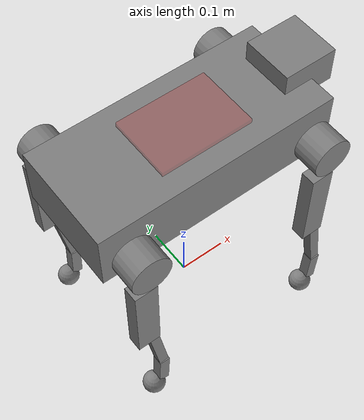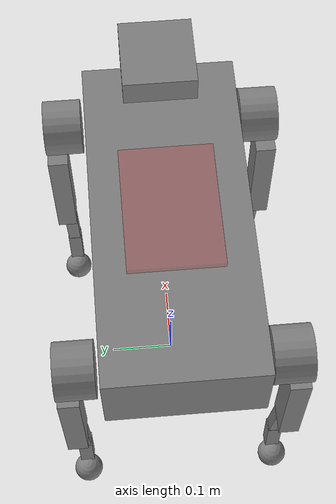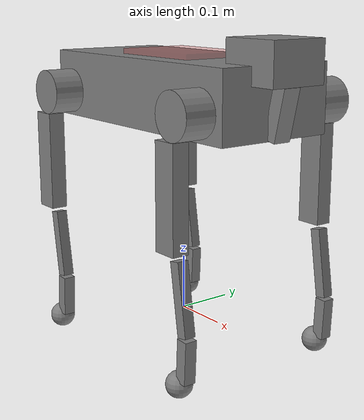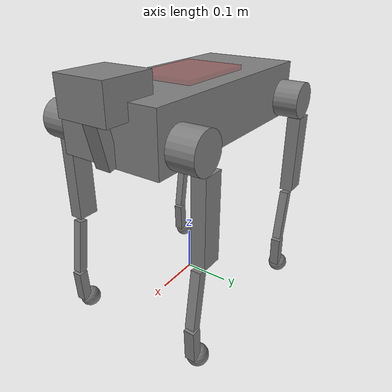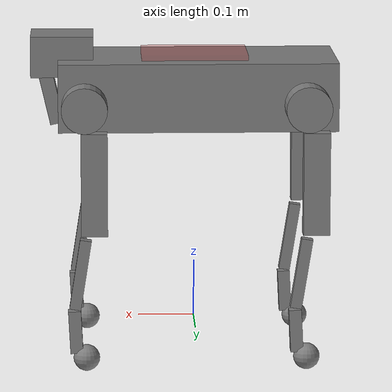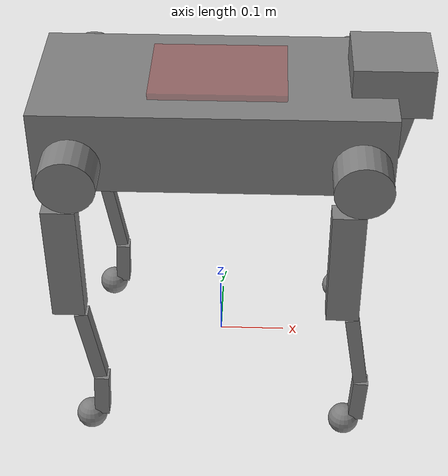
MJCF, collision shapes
<mujoco model="uni_0417">
<!-- zsirob 250825 -->
  <compiler angle="radian" meshdir="./" autolimits="true"/>

  <option iterations="20" ls_iterations="5" timestep="0.002" integrator="Euler">
    <flag eulerdamp="disable"/>
  </option>

  <default>
    <default class="go1">

      <geom condim="1" contype="0" conaffinity="1"/>
      <joint axis="0 1 0" armature="0.01" damping="0.05"/>
      <position forcerange="-30 30" inheritrange="1.5" kp="50"/>

      <default class="abduction">
        <joint axis="1 0 0" range="-0.5233 0.5233" frictionloss="0.3"  margin="0.02" solreflimit="0.001 1"/>
      </default>

      <default class="hip">
        <joint range="-1.1775 2.7475" frictionloss="0.3"  margin="0.02" solreflimit="0.001 1"/>
      </default>

      <default class="knee">
        <joint range="-2.7562 -0.6978" frictionloss="0.3" margin="0.02" solreflimit="0.001 1"/>
      </default>

      <default class="visual">
        <geom type="mesh" contype="0" conaffinity="0" group="2" material="dark"/>
      </default>

      <default class="collision">
        <geom group="3" type="capsule"/>
        <default class="foot">
          <geom type="sphere" size="0.023" pos="0 0 0" solimp="0.9 .95 0.023" condim="3"/>
        </default>
      </default>

    </default>
  </default>

  <asset>
    <material name="dark" rgba="0.2 0.2 0.2 1"/>
    <material name="none" rgba="0.75294 0.75294 0.75294 1" />
    <material name="default_material" rgba="0.7 0.7 0.7 1" />
    <material name="collision_material" rgba="1.0 0.28 0.1 0.9" />
    <mesh name="BASE_LINK.STL" file="BASE_LINK.STL" />
    <mesh name="FL_ABAD_LINK.STL" file="FL_ABAD_LINK.STL" />
    <mesh name="FL_HIP_LINK.STL" file="FL_HIP_LINK.STL" />
    <mesh name="FL_KNEE_LINK.STL" file="FL_KNEE_LINK.STL" />
    <mesh name="FL_FOOT_LINK.STL" file="FL_FOOT_LINK.STL" />
    <mesh name="FR_ABAD_LINK.STL" file="FR_ABAD_LINK.STL" />
    <mesh name="FR_HIP_LINK.STL" file="FR_HIP_LINK.STL" />
    <mesh name="FR_KNEE_LINK.STL" file="FR_KNEE_LINK.STL" />
    <mesh name="FR_FOOT_LINK.STL" file="FR_FOOT_LINK.STL" />
    <mesh name="RR_ABAD_LINK.STL" file="RR_ABAD_LINK.STL" />
    <mesh name="RR_HIP_LINK.STL" file="RR_HIP_LINK.STL" />
    <mesh name="RR_KNEE_LINK.STL" file="RR_KNEE_LINK.STL" />
    <mesh name="RR_FOOT_LINK.STL" file="RR_FOOT_LINK.STL" />
    <mesh name="RL_ABAD_LINK.STL" file="RL_ABAD_LINK.STL" />
    <mesh name="RL_HIP_LINK.STL" file="RL_HIP_LINK.STL" />
    <mesh name="RL_KNEE_LINK.STL" file="RL_KNEE_LINK.STL" />
    <mesh name="RL_FOOT_LINK.STL" file="RL_FOOT_LINK.STL" />
  </asset>

  <worldbody>
    <light name="spotlight" mode="targetbodycom" target="BASE_LINK" pos="3 0 4"/>
    <body name="BASE_LINK"  pos="0 0 0.4" childclass="go1" quat="1 0 0 0">
      <camera name="track" pos="0.846 -1.3 0.316" xyaxes="0.866 0.500 0.000 -0.171 0.296 0.940" mode="trackcom"/>
      <camera name="top" pos="-1 0 1" xyaxes="0 -1 0 0.7 0 0.7" mode="trackcom"/>
      <camera name="side" pos="0 -1 .3" xyaxes="1 0 0 0 1 2" mode="trackcom"/>
      <camera name="back" pos="-1 0 .3" xyaxes="0 -1 0 1 0 2" mode="trackcom"/>
      <inertial pos="0.014501881818807 -0.000289250801671 0.013238465807008" quat="-0.0076083635337945155 0.6942254418113303 -0.00728014172674013 0.7196805876794534" mass="7.30032053935248" diaginertia="0.1026006987158561 0.08404328046371345 0.03227102139098372"/>

      <freejoint/>

      <geom class="visual" type="mesh" rgba="0.592156862745098 0.666666666666667 0.682352941176471 1" mesh="BASE_LINK.STL" />
      <geom name="case" class="collision" type="box" size="0.245 0.1095 0.06" pos="-0.005 0 0.011469"/>
      <geom name="case_1" class="collision" type="box" size="0.0125 0.0166 0.045" pos="0.25239 0 -0.00332" quat="0.993571856 0 0.113203214 0"/>
      <geom name="case_2" class="collision" type="box" size="0.055 0.053 0.036" pos="0.23335 0 0.076435"/>

      <site name="case" pos="0 0 0" rgba="1 0 0 1" size="0.02" group="5"/>
      <site name="imu" pos="0 0 0" rgba="0 1 0 1" size="0.02" group="5"/>
      <body name="PAYLOAD_LINK" pos="0 0 0.075725056">
        <inertial pos="0 0 0" mass="0.01" diaginertia="0.00002 0.00003 0.00004"/>
        <geom
          name="payload_geom"
          type="box"
          size="0.09345 0.066 0.005"
          pos="0 0 0"
          contype="0"
          conaffinity="0"
          density="0"
          rgba="0.8 0.2 0.2 0.3"
        />
      </body>

      <body name="FL_ABAD_LINK" pos="0.144 0.064225 -2.0143e-05">
        <inertial pos="0.0144424564697362 -0.00600368145551691 -1.87988493965952e-07" quat="0.5291736825142328 0.5292105089455847 0.46897609668839413 0.46901265621601496" mass="0.320329944374416" diaginertia="0.00047783943255139626 0.00046908698480158334 0.0001241081155081985"/>

        <joint class="abduction" name="FL_ABAD_JOINT" pos="0 0 0" axis="1 0 0"/>
        <geom type="mesh" class="visual" rgba="1 1 1 1" mesh="FL_ABAD_LINK.STL"/>
        <!-- FL_ABAD_Collision -->
        <geom name="FL_ABAD_COL" class="collision" type="cylinder" size="0.04 0.0275" pos="0.05 0.08 0" quat="0.499998163 0.500001837 -0.5 0.5"/>

        <body name="FL_HIP_LINK" pos="0.04855 0.01325 0">
          <inertial pos="-0.00048600000000000016 0.03225 -0.02093473684210526" quat="0.9731445081294574 0.22538963062352477 0.04541992243914374 -0.011238832256468578" mass="1.33" diaginertia="0.005615092772179515 0.0049505271280553395 0.0015907903549875844"/>
          <joint class="hip" name="FL_HIP_JOINT" pos="0 0 0" axis="0 1 0" />
          <site name="FL_hip" pos="0 0.0 0" type="sphere" size="0.02" rgba="0 1 0 1" group="5"/>

          <geom type="mesh" class="visual" rgba="1 1 1 1" mesh="FL_HIP_LINK.STL" />
          <!-- FL_HIP_Collision -->
          <geom name="FL_HIP_COL" class="collision" type="box" size="0.023 0.015 0.09" pos="-0.015 0.08 -0.13" quat="1 0 0 0"/>

          <body name="FL_KNEE_LINK" pos="0 0.077399 -0.21">
            <inertial pos="0.00798892884543451 5.44137953750745e-07 -0.0869849769173929" quat="0.7064576324739475 -0.03014641061466151 -0.03014053077085178 0.7064703502987295" mass="0.14" diaginertia="0.0010094383372615727 0.0009976757599102577 2.1870869909055355e-05"/>
            <site name="FL_knee" pos="0 0.0 0" type="sphere" size="0.02" rgba="0 1 0 1" group="5"/>

            <joint class="knee" name="FL_KNEE_JOINT" pos="0 0 0" axis="0 1 0" />

                    <geom type="mesh" class="visual" rgba="1 1 1 1" mesh="FL_KNEE_LINK.STL" />
                    <!-- FL_KNEE_Collision -->
                    <geom name="FL_KNEE_COL_0" class="collision" type="box" size="0.01 0.01 0.062" pos="0.009917 0 -0.079793" quat="0.996917334 0 -0.0784590959 0"/>
                    <geom name="FL_KNEE_COL_1" class="collision" type="box" size="0.011 0.011 0.0375" pos="0.018955 0 -0.18187" quat="0.99968856 0 0.024955609 0"/>

                    <body name="FL_FOOT_LINK" pos="0 0 -0.229">
                    <geom pos="0 0 0" type="mesh" class="visual" rgba="0.592156862745098 0.666666666666667 0.682352941176471 1" mesh="FL_FOOT_LINK.STL" />
                    <inertial pos="-2.02372318569566e-07 1.92661398834559e-07 -2.15647114332196e-07" quat="0.707106781186548 0 0 0.707106781186548" mass="0.0589523342854384" diaginertia="1.24762320466804e-05 1.24762153863284e-05 1.24762153863285e-05" />
                    <!-- FL_FOOT_Collision -->
                    <geom name="FL" class="foot" pos="0 0 0"/>
                    <site name="FL" pos="0 0 0" type="sphere" size="0.023" quat="0 0 1 1" group="5"/>
                    </body>

          </body>
        </body>
      </body>

      <body name="FR_ABAD_LINK" pos="0.144 -0.064181 -2.0143e-05">
        <inertial pos="0.014442558979466 0.00600357212318758 -5.04034752824012e-08" quat="0.4689967342827985 0.4689920459643406 0.529194161742345 0.5291900067386679" mass="0.320332974895231" diaginertia="0.00047784300790091016 0.0004690887949312498 0.00012411096159625467"/>

        <joint class="abduction" name="FR_ABAD_JOINT" pos="0 0 0" axis="1 0 0"/>
        <geom type="mesh" class="visual" rgba="1 1 1 1" mesh="FR_ABAD_LINK.STL"/>
        <!-- FR_ABAD_Collision -->
        <geom name="FR_ABAD_COL" class="collision" type="cylinder" size="0.04 0.0275" pos="0.05 -0.08 0" quat="0.499998163 0.500001837 -0.5 0.5"/>

        <body name="FR_HIP_LINK" pos="0.04855 -0.01325 0">
          <inertial pos="-0.00048600000000000016 -0.03225 -0.02093473684210526" quat="0.9731444294565023 -0.22538978092494474 0.04542027146479661 0.011241219348831186" mass="1.33" diaginertia="0.005615092782114939 0.004950529438277558 0.0015907880348299617"/>
          <joint class="hip" name="FR_HIP_JOINT" pos="0 0 0" axis="0 1 0" />
          <site name="FR_hip" pos="0 -0.0 0" type="sphere" size="0.02" rgba="0 1 0 1" group="5"/>

          <geom type="mesh" class="visual" rgba="1 1 1 1" mesh="FR_HIP_LINK.STL" />
          <!-- FR_HIP_Collision -->
          <geom name="FR_HIP_COL" class="collision" type="box" size="0.023 0.015 0.09" pos="-0.015 -0.08 -0.13" quat="1 0 0 0"/>

          <body name="FR_KNEE_LINK" pos="0 -0.077399 -0.21">
            <inertial pos="0.00798935285968155 -5.562946018417e-08 -0.0869799505369122" quat="0.7064483359229148 -0.03014119732260282 -0.030142031975394182 0.7064798049513519" mass="0.14" diaginertia="0.001009428826647702 0.0009976660978701006 2.1870647898408354e-05"/>
            <site name="FR_knee" pos="0 -0.0 0" type="sphere" size="0.02" rgba="0 1 0 1" group="5"/>

            <joint class="knee" name="FR_KNEE_JOINT" pos="0 0 0" axis="0 1 0" />
            <geom type="mesh" class="visual" rgba="1 1 1 1" mesh="FR_KNEE_LINK.STL" />
            <!-- FL_KNEE_Collision -->
            <geom name="FR_KNEE_COL_0" class="collision" type="box" size="0.01 0.01 0.062" pos="0.009917 0 -0.079793" quat="0.996917334 0 -0.0784590959 0"/>
            <geom name="FR_KNEE_COL_1" class="collision" type="box" size="0.011 0.011 0.0375" pos="0.018955 0 -0.18187" quat="0.99968856 0 0.024955609 0"/>

            <body name="FR_FOOT_LINK" pos="0 0 -0.229">
            <geom pos="0 0 0" type="mesh" class="visual" rgba="0.592156862745098 0.666666666666667 0.682352941176471 1" mesh="FR_FOOT_LINK.STL" />
            <inertial pos="-2.02372318569566e-07 -1.92661398876193e-07 -2.15647114332196e-07" quat="0.707106781186548 0 0 0.707106781186548" mass="0.0589523342854384" diaginertia="1.24762320466804e-05 1.24762153863284e-05 1.24762153863285e-05" />
            <geom name="FR" class="foot" pos="0 0 0"/>
            <site name="FR"  type="sphere" size="0.023" pos="0 0 0" quat="0 0 1 1" group="5"/>
            </body>

          </body>
        </body>
      </body>

      <body name="RL_ABAD_LINK" pos="-0.144 0.064225 0">
        <inertial pos="-0.014442562925683 -0.00600357336453766 2.79936310140783e-06" quat="0.4689405748872544 0.46904819090527616 0.5292365881605203 0.5291475839358177" mass="0.320333006502764" diaginertia="0.00047784310557411253 0.000469088820601089 0.0001241110901784922"/>

        <joint class="abduction" name="RL_ABAD_JOINT" pos="0 0 0" axis="1 0 0"/>
        <geom type="mesh" class="visual" rgba="1 1 1 1" mesh="RL_ABAD_LINK.STL"/>
        <!-- RL_ABAD_Collision -->
        <geom name="RL_ABAD_COL" class="collision" type="cylinder" size="0.04 0.0275" pos="-0.05 0.08 0" quat="0.499998163 0.500001837 -0.5 0.5"/>

        <body name="RL_HIP_LINK" pos="-0.04855 0.01325 0">
          <inertial pos="-0.00048600000000000016 0.03225 -0.02093473684210526" quat="0.9731445081294574 0.22538963062352477 0.04541992243914374 -0.011238832256468578" mass="1.33" diaginertia="0.005615092772179515 0.0049505271280553395 0.0015907903549875844"/>
          <joint class="hip" name="RL_HIP_JOINT" pos="0 0 0" axis="0 1 0" />
          <site name="RL_hip" pos="0 0.0 0" type="sphere" size="0.02" rgba="0 1 0 1" group="5"/>

          <geom type="mesh" class="visual" rgba="1 1 1 1" mesh="RL_HIP_LINK.STL" />
          <!-- RL_HIP_Collision -->
          <geom name="RL_HIP_COL" class="collision" type="box" size="0.023 0.015 0.09" pos="-0.015 0.08 -0.13" quat="1 0 0 0"/>

          <body name="RL_KNEE_LINK" pos="0 0.077399 -0.21">
            <inertial pos="0.00798892953763553 5.44350242936975e-07 -0.08698496980934" quat="0.7064576257064045 -0.03014640709960361 -0.030140525850325388 0.7064703574260721" mass="0.14" diaginertia="0.0010094382486661386 0.0009976756713130038 2.187086904348538e-05"/>
            <site name="RL_knee" pos="0 0.0 0" type="sphere" size="0.02" rgba="0 1 0 1" group="5"/>

            <joint class="knee" name="RL_KNEE_JOINT" pos="0 0 0" axis="0 1 0" />
            <geom type="mesh" class="visual" rgba="1 1 1 1" mesh="RL_KNEE_LINK.STL" />
            <!-- RL_KNEE_Collision -->
            <geom name="RL_KNEE_COL_0" class="collision" type="box" size="0.01 0.01 0.062" pos="0.009917 0 -0.079793" quat="0.996917334 0 -0.0784590959 0"/>
            <geom name="RL_KNEE_COL_1" class="collision" type="box" size="0.011 0.011 0.0375" pos="0.018955 0 -0.18187" quat="0.99968856 0 0.024955609 0"/>

            <body name="RL_FOOT_LINK" pos="0 0 -0.229">
            <geom pos="0 0 0" type="mesh" class="visual" rgba="0.592156862745098 0.666666666666667 0.682352941176471 1" mesh="RL_FOOT_LINK.STL" />
            <inertial pos="-2.02372318444666e-07 1.92661398834559e-07 -2.15647113332995e-07" quat="0.707106781186548 0 0 0.707106781186548" mass="0.0589523342854384" diaginertia="1.24762320466805e-05 1.24762153863285e-05 1.24762153863285e-05" />
            <geom name="RL" class="foot" pos="0 0 0"/>
            <site name="RL" type="sphere" size="0.023" pos="0 0 0" group="5"/>
            </body>

          </body>
        </body>
      </body>

      <body name="RR_ABAD_LINK" pos="-0.144 -0.064181 0">
        <inertial pos="-0.0144424500070948 0.00600367002172289 2.64158132828873e-06" quat="0.5291656722469249 0.5292185501466036 0.46906623712092627 0.4689224698064746" mass="0.320330247102786" diaginertia="0.00047783956217325904 0.0004690870634743024 0.00012410820705626772"/>

        <joint class="abduction" name="RR_ABAD_JOINT" pos="0 0 0" axis="1 0 0"/>
        <geom type="mesh" class="visual" rgba="1 1 1 1" mesh="RR_ABAD_LINK.STL"/>
        <!-- RR_ABAD_Collision -->
        <geom name="RR_ABAD_COL" class="collision" type="cylinder" size="0.04 0.0275" pos="-0.05 -0.08 0" quat="0.499998163 0.500001837 -0.5 0.5"/>

        <body name="RR_HIP_LINK" pos="-0.04855 -0.01325 0">
          <inertial pos="-0.00048600000000000016 -0.03225 -0.02093473684210526" quat="0.9731444294565023 -0.22538978092494474 0.04542027146479661 0.011241219348831186" mass="1.33" diaginertia="0.005615092782114939 0.004950529438277558 0.0015907880348299617"/>
          <joint class="hip" name="RR_HIP_JOINT" pos="0 0 0" axis="0 1 0" />
          <site name="RR_hip" pos="0 -0.0 0" type="sphere" size="0.02" rgba="0 1 0 1" group="5"/>

          <geom type="mesh" class="visual" rgba="1 1 1 1" mesh="RR_HIP_LINK.STL" />
          <!-- RL_HIP_Collision -->
          <geom name="RR_HIP_COL" class="collision" type="box" size="0.023 0.015 0.09" pos="-0.015 -0.08 -0.13" quat="1 0 0 0"/>

          <body name="RR_KNEE_LINK" pos="0 -0.077399 -0.21">
            <inertial pos="0.00798915208994713 -1.36080637355707e-07 -0.0869792912085275" quat="0.7064535218318484 -0.030140745448694866 -0.030141458256116766 0.7064746629917955" mass="0.14" diaginertia="0.0010094322984541605 0.0009976696669602042 2.187046418156173e-05"/>
            <site name="RR_knee" pos="0 -0.0 0" type="sphere" size="0.02" rgba="0 1 0 1" group="5"/>

            <joint class="knee" name="RR_KNEE_JOINT" pos="0 0 0" axis="0 1 0" />

                    <geom type="mesh" class="visual" rgba="1 1 1 1" mesh="RR_KNEE_LINK.STL" />
                  <!-- RL_KNEE_Collision -->
                  <geom name="RR_KNEE_COL_0" class="collision" type="box" size="0.01 0.01 0.062" pos="0.009917 0 -0.079793" quat="0.996917334 0 -0.0784590959 0"/>
                  <geom name="RR_KNEE_COL_1" class="collision" type="box" size="0.011 0.011 0.0375" pos="0.018955 0 -0.18187" quat="0.99968856 0 0.024955609 0"/>
                  <body name="RR_FOOT_LINK" pos="0 0 -0.229">
                  <geom pos="0 0 0" type="mesh" class="visual" rgba="0.592156862745098 0.666666666666667 0.682352941176471 1" mesh="RR_FOOT_LINK.STL" />
                  <inertial pos="-2.02372318389155e-07 -1.92661398876193e-07 -2.15647113332995e-07" quat="0.707106781186548 0 0 0.707106781186548" mass="0.0589523342854384" diaginertia="1.24762320466805e-05 1.24762153863285e-05 1.24762153863285e-05" />
                  <geom name="RR" class="foot" pos="0 0 0"/>
                  <site name="RR" type="sphere" size="0.023" pos="0 0 0" group="5"/>
                  </body>

          </body>
        </body>
      </body>

    </body>
  </worldbody>

  <actuator>
    <position class="abduction" name="FL_hip" joint="FL_ABAD_JOINT" />
    <position class="hip" name="FL_thigh" joint="FL_HIP_JOINT"/>
    <position class="knee" name="FL_calf" joint="FL_KNEE_JOINT"/>
    <position class="abduction" name="FR_hip" joint="FR_ABAD_JOINT"/>
    <position class="hip" name="FR_thigh" joint="FR_HIP_JOINT"/>
    <position class="knee" name="FR_calf" joint="FR_KNEE_JOINT"/>
    <position class="abduction" name="RL_hip" joint="RL_ABAD_JOINT"/>
    <position class="hip" name="RL_thigh" joint="RL_HIP_JOINT"/>
    <position class="knee" name="RL_calf" joint="RL_KNEE_JOINT"/>
    <position class="abduction" name="RR_hip" joint="RR_ABAD_JOINT"/>
    <position class="hip" name="RR_thigh" joint="RR_HIP_JOINT"/>
    <position class="knee" name="RR_calf" joint="RR_KNEE_JOINT"/>
  </actuator>

  <sensor>
    <gyro site="imu" name="gyro"/>
    <velocimeter site="imu" name="local_linvel"/>
    <accelerometer site="imu" name="accelerometer"/>
    <framepos objtype="site" objname="imu" name="position"/>
    <framezaxis objtype="site" objname="imu" name="upvector"/>
    <framexaxis objtype="site" objname="imu" name="forwardvector"/>
    <framelinvel objtype="site" objname="imu" name="global_linvel"/>
    <frameangvel objtype="site" objname="imu" name="global_angvel"/>
    <framequat objtype="site" objname="imu" name="orientation"/>
    <framelinvel objtype="site" objname="FL" name="FL_global_linvel"/>
    <framelinvel objtype="site" objname="FR" name="FR_global_linvel"/>
    <framelinvel objtype="site" objname="RL" name="RL_global_linvel"/>
    <framelinvel objtype="site" objname="RR" name="RR_global_linvel"/>
     <framepos objtype="site" objname="FL" name="FL_pos" reftype="site" refname="imu"/>
    <framepos objtype="site" objname="FR" name="FR_pos" reftype="site" refname="imu"/>
    <framepos objtype="site" objname="RL" name="RL_pos" reftype="site" refname="imu"/>
    <framepos objtype="site" objname="RR" name="RR_pos" reftype="site" refname="imu"/>
    <touch site="FL" name="FL_contact_force"/>
    <touch site="FR" name="FR_contact_force"/>
    <touch site="RL" name="RL_contact_force"/>
    <touch site="RR" name="RR_contact_force"/>
  </sensor>
</mujoco>
